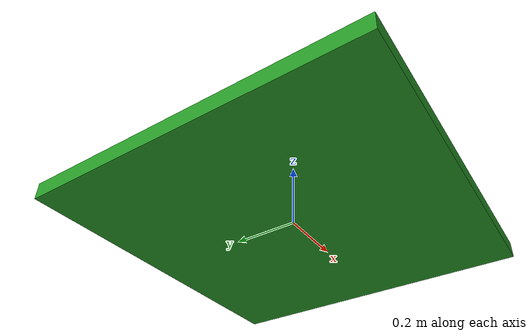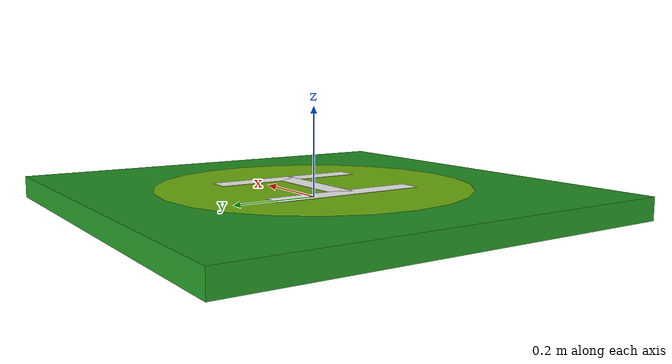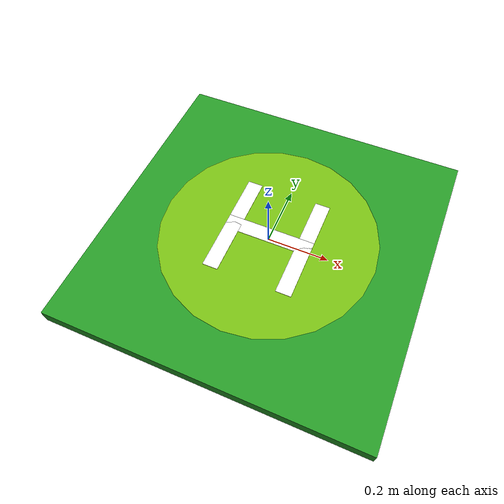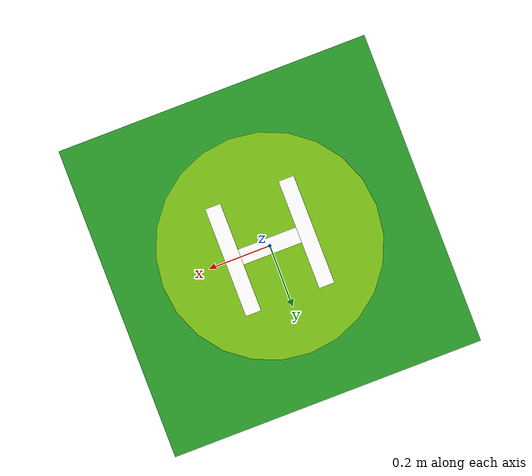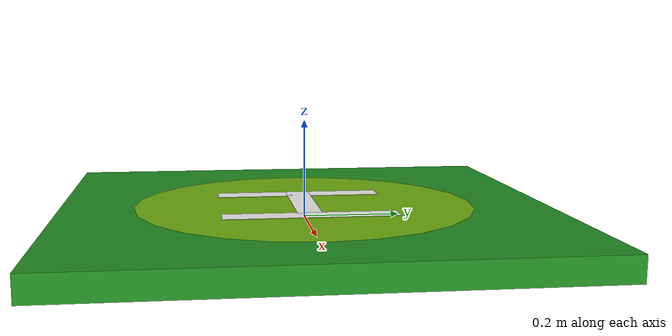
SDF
<?xml version="1.0"?>
<sdf version="1.6">
  <model name="landing_platform">
    <static>false</static>
    <link name="platform_link">
      <gravity>false</gravity>
      <inertial>
        <mass>10.0</mass>
        <inertia>
          <ixx>0.85</ixx>
          <iyy>0.85</iyy>
          <izz>1.67</izz>
          <ixy>0</ixy>
          <ixz>0</ixz>
          <iyz>0</iyz>
        </inertia>
      </inertial>

      <!-- Platform slab -->
      <collision name="collision">
        <geometry>
          <box><size>1.0 1.0 0.05</size></box>
        </geometry>
        <surface>
          <friction>
            <ode><mu>100</mu><mu2>50</mu2></ode>
          </friction>
        </surface>
      </collision>
      <visual name="base_visual">
        <geometry>
          <box><size>1.0 1.0 0.05</size></box>
        </geometry>
        <material>
          <ambient>0.1 0.4 0.1 1</ambient>
          <diffuse>0.15 0.6 0.15 1</diffuse>
        </material>
      </visual>

      <!-- Helipad "H" marker — left vertical stroke -->
      <visual name="h_left">
        <pose>-0.12 0 0.026 0 0 0</pose>
        <geometry>
          <box><size>0.05 0.35 0.001</size></box>
        </geometry>
        <material>
          <ambient>1 1 1 1</ambient>
          <diffuse>1 1 1 1</diffuse>
        </material>
      </visual>
      <!-- H — right vertical stroke -->
      <visual name="h_right">
        <pose>0.12 0 0.026 0 0 0</pose>
        <geometry>
          <box><size>0.05 0.35 0.001</size></box>
        </geometry>
        <material>
          <ambient>1 1 1 1</ambient>
          <diffuse>1 1 1 1</diffuse>
        </material>
      </visual>
      <!-- H — horizontal bar -->
      <visual name="h_bar">
        <pose>0 0 0.026 0 0 0</pose>
        <geometry>
          <box><size>0.29 0.05 0.001</size></box>
        </geometry>
        <material>
          <ambient>1 1 1 1</ambient>
          <diffuse>1 1 1 1</diffuse>
        </material>
      </visual>

      <!-- Yellow circle around H -->
      <visual name="circle">
        <pose>0 0 0.0255 0 0 0</pose>
        <geometry>
          <cylinder><radius>0.35</radius><length>0.001</length></cylinder>
        </geometry>
        <material>
          <ambient>0.9 0.9 0 0.5</ambient>
          <diffuse>1 1 0 0.4</diffuse>
        </material>
      </visual>
    </link>
  </model>
</sdf>
